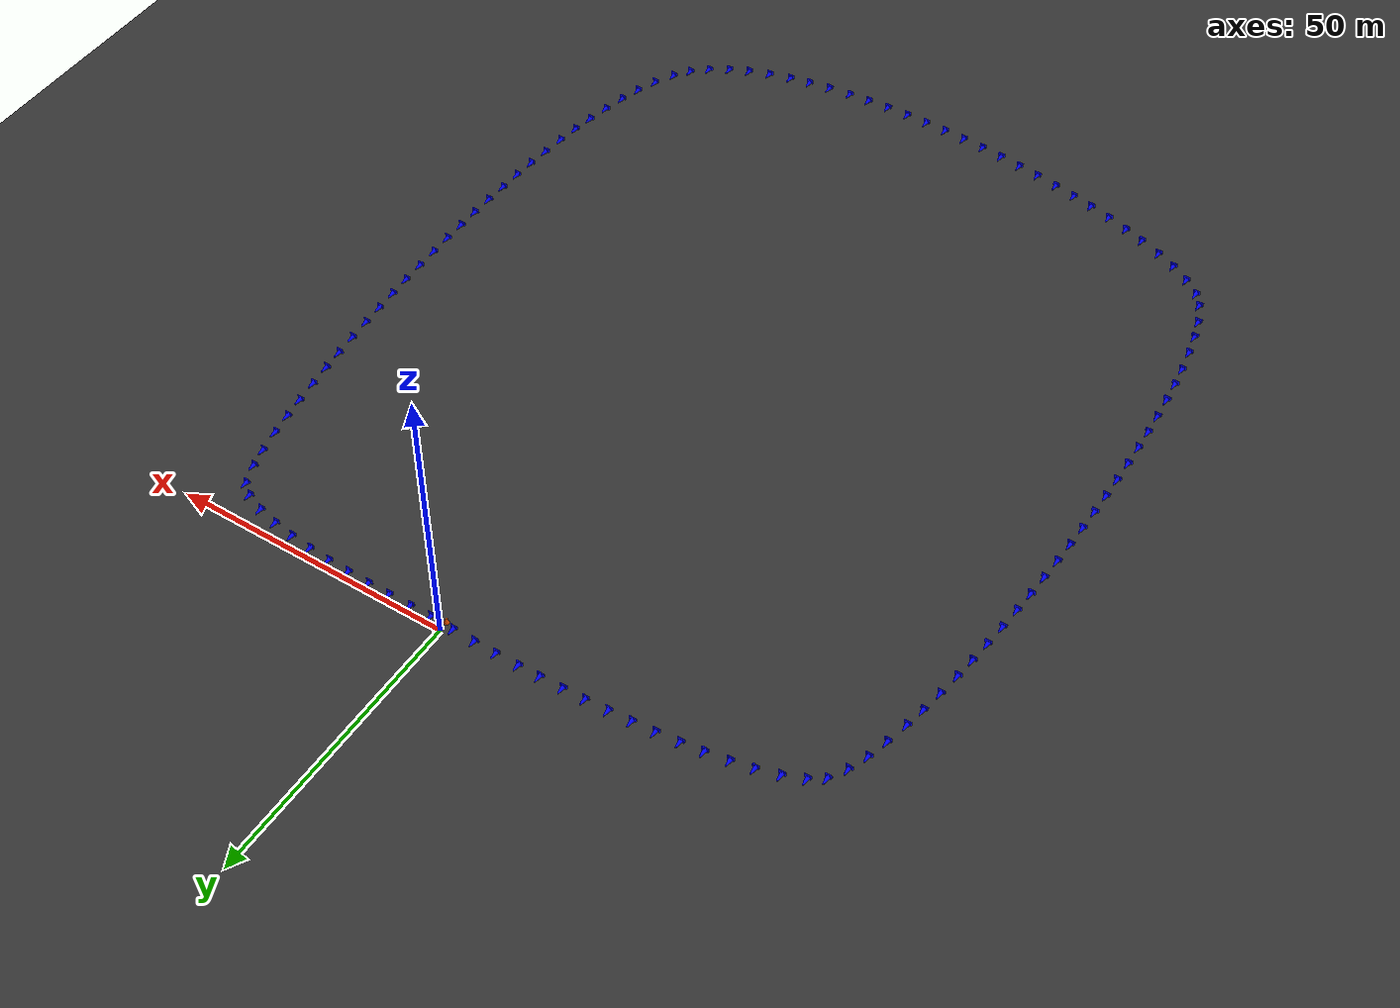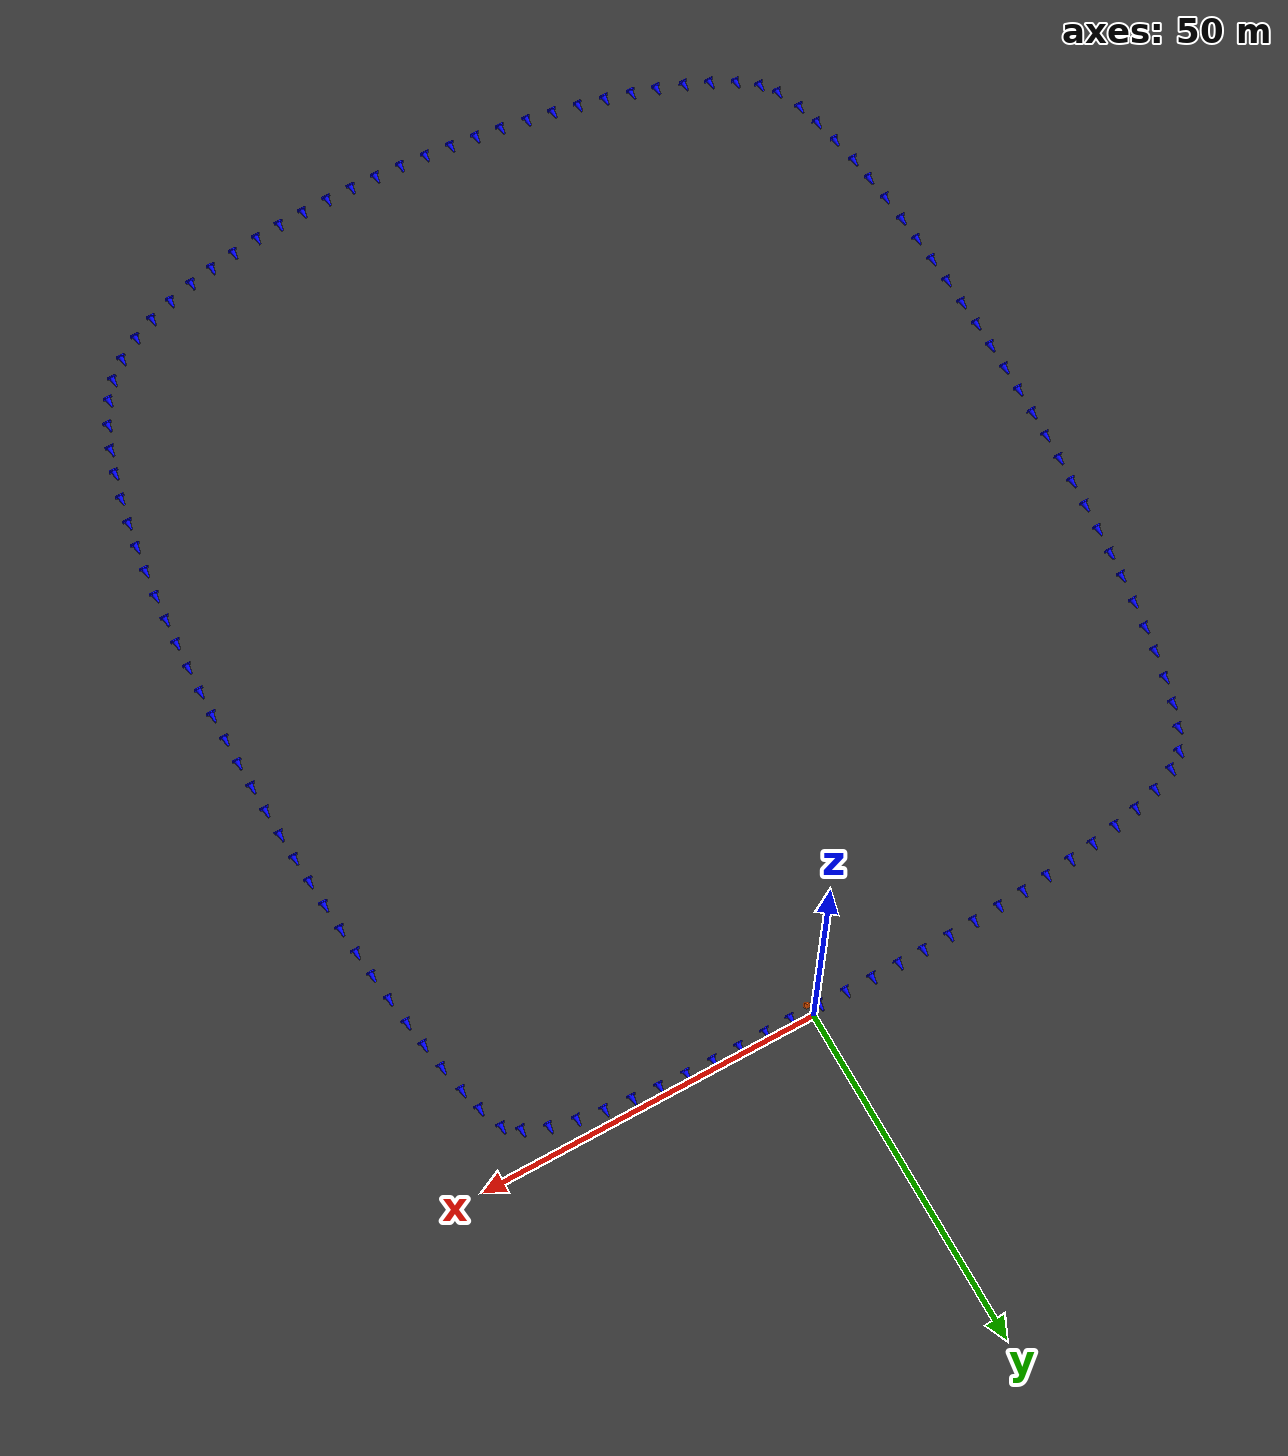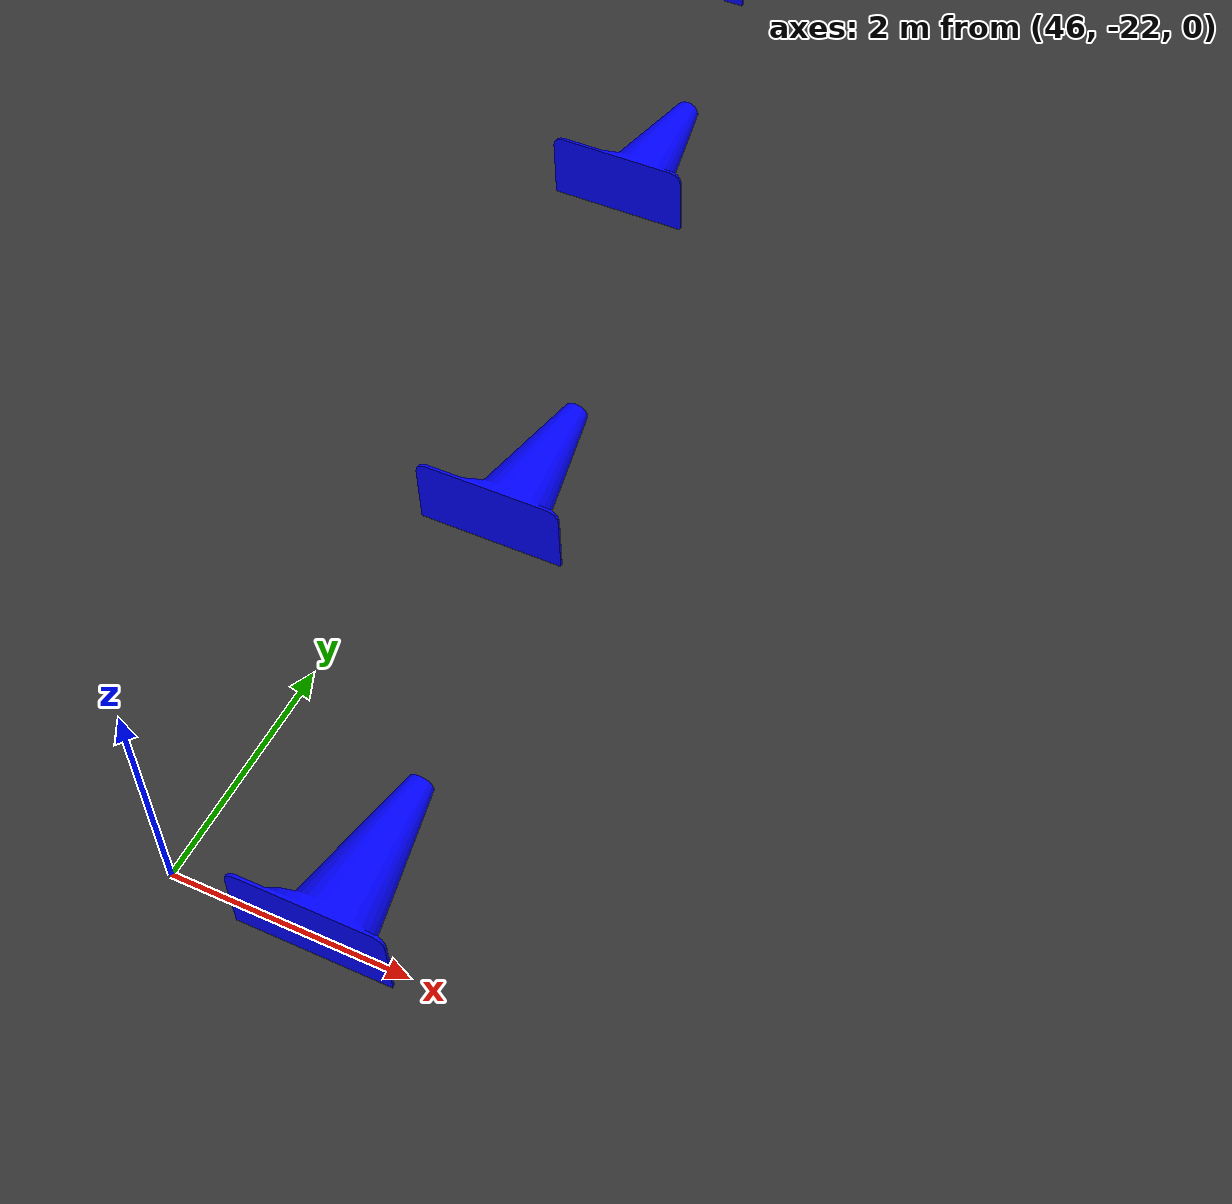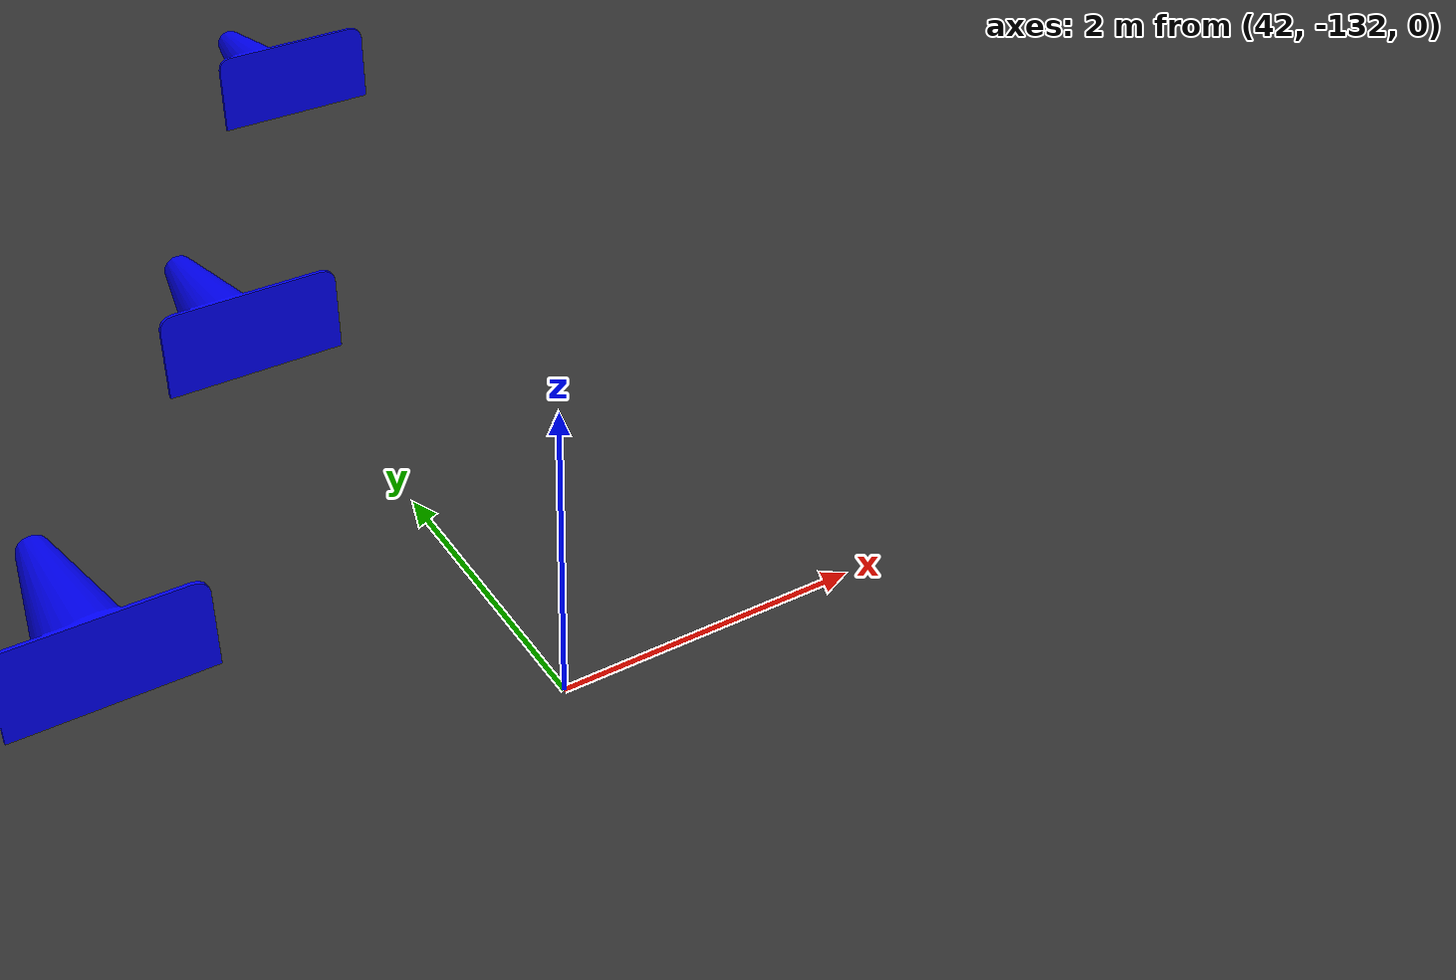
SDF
<sdf version="1.7">
 <world name="generated_world">
  <scene><sky><clouds><speed>12</speed></clouds></sky><grid>false</grid><shadows>1</shadows></scene>
  <physics type="ode">
   <max_step_size>0.001</max_step_size>
   <real_time_update_rate>1000</real_time_update_rate>
  </physics>
  <plugin filename="gz-sim-physics-system" name="gz::sim::systems::Physics"/>
  <plugin filename="gz-sim-user-commands-system" name="gz::sim::systems::UserCommands"/>
  <plugin filename="gz-sim-scene-broadcaster-system" name="gz::sim::systems::SceneBroadcaster"/>
  <plugin filename="gz-sim-contact-system" name="gz::sim::systems::Contact"/>
  <light name="sun" type="directional">
   <pose>0 0 10 0 0 0</pose>
   <diffuse>1 1 1 1</diffuse>
   <specular>0.2 0.2 0.2 1</specular>
   <direction>-0.5 0.2 -1</direction>
   <attenuation>
    <range>300</range>
    <constant>0.9</constant>
    <linear>0.01</linear>
    <quadratic>0.001</quadratic>
   </attenuation>
  </light>
  <model name="asphalt_ground">
   <static>1</static>
   <link name="link">
    <collision name="collision">
     <geometry><plane><normal>0 0 1</normal><size>300 300</size></plane></geometry>
     <surface><friction><ode><mu>100</mu><mu2>50</mu2></ode></friction></surface>
    </collision>
    <visual name="visual">
     <geometry><plane><normal>0 0 1</normal><size>300 300</size></plane></geometry>
     <material>
      <ambient>0.2 0.2 0.2 1</ambient>
      <diffuse>0.2 0.2 0.2 1</diffuse>
      <specular>0.1 0.1 0.1 1</specular>
     </material>
    </visual>
   </link>
  </model>
  <include><uri>model://cone_yellow</uri><name>cone_yellow_001</name><pose>2.761 1.924 0 0 0 0</pose></include>
  <include><uri>model://cone_yellow</uri><name>cone_yellow_002</name><pose>6.602 1.987 0 0 0 0</pose></include>
  <include><uri>model://cone_yellow</uri><name>cone_yellow_003</name><pose>10.665 2.022 0 0 0 0</pose></include>
  <include><uri>model://cone_yellow</uri><name>cone_yellow_004</name><pose>14.726 1.995 0 0 0 0</pose></include>
  <include><uri>model://cone_yellow</uri><name>cone_yellow_005</name><pose>18.802 1.890 0 0 0 0</pose></include>
  <include><uri>model://cone_yellow</uri><name>cone_yellow_006</name><pose>22.865 1.694 0 0 0 0</pose></include>
  <include><uri>model://cone_yellow</uri><name>cone_yellow_007</name><pose>26.916 1.383 0 0 0 0</pose></include>
  <include><uri>model://cone_yellow</uri><name>cone_yellow_008</name><pose>30.998 0.919 0 0 0 0</pose></include>
  <include><uri>model://cone_yellow</uri><name>cone_yellow_009</name><pose>35.063 0.244 0 0 0 0</pose></include>
  <include>
   <uri>model://cone_yellow</uri>
   <name>cone_yellow_010</name>
   <pose>39.097 -0.750 0 0 0 0</pose>
  </include>
  <include>
   <uri>model://cone_yellow</uri>
   <name>cone_yellow_011</name>
   <pose>43.122 -2.360 0 0 0 0</pose>
  </include>
  <include>
   <uri>model://cone_yellow</uri>
   <name>cone_yellow_012</name>
   <pose>46.529 -5.212 0 0 0 0</pose>
  </include>
  <include>
   <uri>model://cone_yellow</uri>
   <name>cone_yellow_013</name>
   <pose>48.322 -9.685 0 0 0 0</pose>
  </include>
  <include>
   <uri>model://cone_yellow</uri>
   <name>cone_yellow_014</name>
   <pose>49.221 -13.244 0 0 0 0</pose>
  </include>
  <include>
   <uri>model://cone_yellow</uri>
   <name>cone_yellow_015</name>
   <pose>50.065 -17.456 0 0 0 0</pose>
  </include>
  <include>
   <uri>model://cone_yellow</uri>
   <name>cone_yellow_016</name>
   <pose>50.732 -21.454 0 0 0 0</pose>
  </include>
  <include>
   <uri>model://cone_yellow</uri>
   <name>cone_yellow_017</name>
   <pose>51.290 -25.326 0 0 0 0</pose>
  </include>
  <include>
   <uri>model://cone_yellow</uri>
   <name>cone_yellow_018</name>
   <pose>51.813 -29.484 0 0 0 0</pose>
  </include>
  <include>
   <uri>model://cone_yellow</uri>
   <name>cone_yellow_019</name>
   <pose>52.264 -33.578 0 0 0 0</pose>
  </include>
  <include>
   <uri>model://cone_yellow</uri>
   <name>cone_yellow_020</name>
   <pose>52.640 -37.459 0 0 0 0</pose>
  </include>
  <include>
   <uri>model://cone_yellow</uri>
   <name>cone_yellow_021</name>
   <pose>52.982 -41.482 0 0 0 0</pose>
  </include>
  <include>
   <uri>model://cone_yellow</uri>
   <name>cone_yellow_022</name>
   <pose>53.286 -45.630 0 0 0 0</pose>
  </include>
  <include>
   <uri>model://cone_yellow</uri>
   <name>cone_yellow_023</name>
   <pose>53.535 -49.644 0 0 0 0</pose>
  </include>
  <include>
   <uri>model://cone_yellow</uri>
   <name>cone_yellow_024</name>
   <pose>53.741 -53.615 0 0 0 0</pose>
  </include>
  <include>
   <uri>model://cone_yellow</uri>
   <name>cone_yellow_025</name>
   <pose>53.907 -57.644 0 0 0 0</pose>
  </include>
  <include>
   <uri>model://cone_yellow</uri>
   <name>cone_yellow_026</name>
   <pose>54.033 -61.719 0 0 0 0</pose>
  </include>
  <include>
   <uri>model://cone_yellow</uri>
   <name>cone_yellow_027</name>
   <pose>54.113 -65.774 0 0 0 0</pose>
  </include>
  <include>
   <uri>model://cone_yellow</uri>
   <name>cone_yellow_028</name>
   <pose>54.149 -69.802 0 0 0 0</pose>
  </include>
  <include>
   <uri>model://cone_yellow</uri>
   <name>cone_yellow_029</name>
   <pose>54.139 -73.833 0 0 0 0</pose>
  </include>
  <include>
   <uri>model://cone_yellow</uri>
   <name>cone_yellow_030</name>
   <pose>54.080 -77.852 0 0 0 0</pose>
  </include>
  <include>
   <uri>model://cone_yellow</uri>
   <name>cone_yellow_031</name>
   <pose>53.968 -81.893 0 0 0 0</pose>
  </include>
  <include>
   <uri>model://cone_yellow</uri>
   <name>cone_yellow_032</name>
   <pose>53.798 -85.993 0 0 0 0</pose>
  </include>
  <include>
   <uri>model://cone_yellow</uri>
   <name>cone_yellow_033</name>
   <pose>53.568 -90.037 0 0 0 0</pose>
  </include>
  <include>
   <uri>model://cone_yellow</uri>
   <name>cone_yellow_034</name>
   <pose>53.276 -94.013 0 0 0 0</pose>
  </include>
  <include>
   <uri>model://cone_yellow</uri>
   <name>cone_yellow_035</name>
   <pose>52.910 -97.997 0 0 0 0</pose>
  </include>
  <include>
   <uri>model://cone_yellow</uri>
   <name>cone_yellow_036</name>
   <pose>52.436 -102.169 0 0 0 0</pose>
  </include>
  <include>
   <uri>model://cone_yellow</uri>
   <name>cone_yellow_037</name>
   <pose>51.877 -106.203 0 0 0 0</pose>
  </include>
  <include>
   <uri>model://cone_yellow</uri>
   <name>cone_yellow_038</name>
   <pose>51.227 -110.078 0 0 0 0</pose>
  </include>
  <include>
   <uri>model://cone_yellow</uri>
   <name>cone_yellow_039</name>
   <pose>50.404 -114.136 0 0 0 0</pose>
  </include>
  <include>
   <uri>model://cone_yellow</uri>
   <name>cone_yellow_040</name>
   <pose>49.381 -118.247 0 0 0 0</pose>
  </include>
  <include>
   <uri>model://cone_yellow</uri>
   <name>cone_yellow_041</name>
   <pose>48.209 -122.051 0 0 0 0</pose>
  </include>
  <include>
   <uri>model://cone_yellow</uri>
   <name>cone_yellow_042</name>
   <pose>46.701 -125.919 0 0 0 0</pose>
  </include>
  <include>
   <uri>model://cone_yellow</uri>
   <name>cone_yellow_043</name>
   <pose>44.684 -129.796 0 0 0 0</pose>
  </include>
  <include>
   <uri>model://cone_yellow</uri>
   <name>cone_yellow_044</name>
   <pose>42.317 -132.992 0 0 0 0</pose>
  </include>
  <include>
   <uri>model://cone_yellow</uri>
   <name>cone_yellow_045</name>
   <pose>39.255 -135.776 0 0 0 0</pose>
  </include>
  <include>
   <uri>model://cone_yellow</uri>
   <name>cone_yellow_046</name>
   <pose>35.584 -138.137 0 0 0 0</pose>
  </include>
  <include>
   <uri>model://cone_yellow</uri>
   <name>cone_yellow_047</name>
   <pose>31.905 -139.897 0 0 0 0</pose>
  </include>
  <include>
   <uri>model://cone_yellow</uri>
   <name>cone_yellow_048</name>
   <pose>28.028 -141.326 0 0 0 0</pose>
  </include>
  <include>
   <uri>model://cone_yellow</uri>
   <name>cone_yellow_049</name>
   <pose>23.914 -142.500 0 0 0 0</pose>
  </include>
  <include>
   <uri>model://cone_yellow</uri>
   <name>cone_yellow_050</name>
   <pose>20.053 -143.358 0 0 0 0</pose>
  </include>
  <include>
   <uri>model://cone_yellow</uri>
   <name>cone_yellow_051</name>
   <pose>16.014 -144.054 0 0 0 0</pose>
  </include>
  <include>
   <uri>model://cone_yellow</uri>
   <name>cone_yellow_052</name>
   <pose>11.848 -144.591 0 0 0 0</pose>
  </include>
  <include>
   <uri>model://cone_yellow</uri>
   <name>cone_yellow_053</name>
   <pose>7.893 -144.957 0 0 0 0</pose>
  </include>
  <include>
   <uri>model://cone_yellow</uri>
   <name>cone_yellow_054</name>
   <pose>3.847 -145.202 0 0 0 0</pose>
  </include>
  <include>
   <uri>model://cone_yellow</uri>
   <name>cone_yellow_055</name>
   <pose>-0.270 -145.333 0 0 0 0</pose>
  </include>
  <include>
   <uri>model://cone_yellow</uri>
   <name>cone_yellow_056</name>
   <pose>-4.316 -145.353 0 0 0 0</pose>
  </include>
  <include>
   <uri>model://cone_yellow</uri>
   <name>cone_yellow_057</name>
   <pose>-8.354 -145.275 0 0 0 0</pose>
  </include>
  <include>
   <uri>model://cone_yellow</uri>
   <name>cone_yellow_058</name>
   <pose>-12.404 -145.102 0 0 0 0</pose>
  </include>
  <include>
   <uri>model://cone_yellow</uri>
   <name>cone_yellow_059</name>
   <pose>-16.461 -144.837 0 0 0 0</pose>
  </include>
  <include>
   <uri>model://cone_yellow</uri>
   <name>cone_yellow_060</name>
   <pose>-20.519 -144.482 0 0 0 0</pose>
  </include>
  <include>
   <uri>model://cone_yellow</uri>
   <name>cone_yellow_061</name>
   <pose>-24.536 -144.043 0 0 0 0</pose>
  </include>
  <include>
   <uri>model://cone_yellow</uri>
   <name>cone_yellow_062</name>
   <pose>-28.495 -143.523 0 0 0 0</pose>
  </include>
  <include>
   <uri>model://cone_yellow</uri>
   <name>cone_yellow_063</name>
   <pose>-32.586 -142.891 0 0 0 0</pose>
  </include>
  <include>
   <uri>model://cone_yellow</uri>
   <name>cone_yellow_064</name>
   <pose>-36.596 -142.173 0 0 0 0</pose>
  </include>
  <include>
   <uri>model://cone_yellow</uri>
   <name>cone_yellow_065</name>
   <pose>-40.479 -141.377 0 0 0 0</pose>
  </include>
  <include>
   <uri>model://cone_yellow</uri>
   <name>cone_yellow_066</name>
   <pose>-44.519 -140.430 0 0 0 0</pose>
  </include>
  <include>
   <uri>model://cone_yellow</uri>
   <name>cone_yellow_067</name>
   <pose>-48.503 -139.360 0 0 0 0</pose>
  </include>
  <include>
   <uri>model://cone_yellow</uri>
   <name>cone_yellow_068</name>
   <pose>-52.239 -138.206 0 0 0 0</pose>
  </include>
  <include>
   <uri>model://cone_yellow</uri>
   <name>cone_yellow_069</name>
   <pose>-56.281 -136.747 0 0 0 0</pose>
  </include>
  <include>
   <uri>model://cone_yellow</uri>
   <name>cone_yellow_070</name>
   <pose>-60.022 -135.124 0 0 0 0</pose>
  </include>
  <include>
   <uri>model://cone_yellow</uri>
   <name>cone_yellow_071</name>
   <pose>-63.741 -133.089 0 0 0 0</pose>
  </include>
  <include>
   <uri>model://cone_yellow</uri>
   <name>cone_yellow_072</name>
   <pose>-67.132 -130.474 0 0 0 0</pose>
  </include>
  <include>
   <uri>model://cone_yellow</uri>
   <name>cone_yellow_073</name>
   <pose>-69.463 -127.326 0 0 0 0</pose>
  </include>
  <include>
   <uri>model://cone_yellow</uri>
   <name>cone_yellow_074</name>
   <pose>-71.238 -123.057 0 0 0 0</pose>
  </include>
  <include>
   <uri>model://cone_yellow</uri>
   <name>cone_yellow_075</name>
   <pose>-72.293 -119.314 0 0 0 0</pose>
  </include>
  <include>
   <uri>model://cone_yellow</uri>
   <name>cone_yellow_076</name>
   <pose>-73.147 -115.288 0 0 0 0</pose>
  </include>
  <include>
   <uri>model://cone_yellow</uri>
   <name>cone_yellow_077</name>
   <pose>-73.849 -110.996 0 0 0 0</pose>
  </include>
  <include>
   <uri>model://cone_yellow</uri>
   <name>cone_yellow_078</name>
   <pose>-74.340 -107.190 0 0 0 0</pose>
  </include>
  <include>
   <uri>model://cone_yellow</uri>
   <name>cone_yellow_079</name>
   <pose>-74.755 -103.167 0 0 0 0</pose>
  </include>
  <include>
   <uri>model://cone_yellow</uri>
   <name>cone_yellow_080</name>
   <pose>-75.096 -98.952 0 0 0 0</pose>
  </include>
  <include>
   <uri>model://cone_yellow</uri>
   <name>cone_yellow_081</name>
   <pose>-75.344 -94.973 0 0 0 0</pose>
  </include>
  <include>
   <uri>model://cone_yellow</uri>
   <name>cone_yellow_082</name>
   <pose>-75.528 -91.008 0 0 0 0</pose>
  </include>
  <include>
   <uri>model://cone_yellow</uri>
   <name>cone_yellow_083</name>
   <pose>-75.659 -86.948 0 0 0 0</pose>
  </include>
  <include>
   <uri>model://cone_yellow</uri>
   <name>cone_yellow_084</name>
   <pose>-75.738 -82.810 0 0 0 0</pose>
  </include>
  <include>
   <uri>model://cone_yellow</uri>
   <name>cone_yellow_085</name>
   <pose>-75.765 -78.811 0 0 0 0</pose>
  </include>
  <include>
   <uri>model://cone_yellow</uri>
   <name>cone_yellow_086</name>
   <pose>-75.747 -74.800 0 0 0 0</pose>
  </include>
  <include>
   <uri>model://cone_yellow</uri>
   <name>cone_yellow_087</name>
   <pose>-75.684 -70.766 0 0 0 0</pose>
  </include>
  <include>
   <uri>model://cone_yellow</uri>
   <name>cone_yellow_088</name>
   <pose>-75.579 -66.722 0 0 0 0</pose>
  </include>
  <include>
   <uri>model://cone_yellow</uri>
   <name>cone_yellow_089</name>
   <pose>-75.430 -62.659 0 0 0 0</pose>
  </include>
  <include>
   <uri>model://cone_yellow</uri>
   <name>cone_yellow_090</name>
   <pose>-75.238 -58.611 0 0 0 0</pose>
  </include>
  <include>
   <uri>model://cone_yellow</uri>
   <name>cone_yellow_091</name>
   <pose>-75.006 -54.599 0 0 0 0</pose>
  </include>
  <include>
   <uri>model://cone_yellow</uri>
   <name>cone_yellow_092</name>
   <pose>-74.733 -50.640 0 0 0 0</pose>
  </include>
  <include>
   <uri>model://cone_yellow</uri>
   <name>cone_yellow_093</name>
   <pose>-74.402 -46.536 0 0 0 0</pose>
  </include>
  <include>
   <uri>model://cone_yellow</uri>
   <name>cone_yellow_094</name>
   <pose>-74.020 -42.448 0 0 0 0</pose>
  </include>
  <include>
   <uri>model://cone_yellow</uri>
   <name>cone_yellow_095</name>
   <pose>-73.594 -38.476 0 0 0 0</pose>
  </include>
  <include>
   <uri>model://cone_yellow</uri>
   <name>cone_yellow_096</name>
   <pose>-73.126 -34.638 0 0 0 0</pose>
  </include>
  <include>
   <uri>model://cone_yellow</uri>
   <name>cone_yellow_097</name>
   <pose>-72.531 -30.391 0 0 0 0</pose>
  </include>
  <include>
   <uri>model://cone_yellow</uri>
   <name>cone_yellow_098</name>
   <pose>-71.877 -26.349 0 0 0 0</pose>
  </include>
  <include>
   <uri>model://cone_yellow</uri>
   <name>cone_yellow_099</name>
   <pose>-71.169 -22.572 0 0 0 0</pose>
  </include>
  <include>
   <uri>model://cone_yellow</uri>
   <name>cone_yellow_100</name>
   <pose>-70.230 -18.360 0 0 0 0</pose>
  </include>
  <include>
   <uri>model://cone_yellow</uri>
   <name>cone_yellow_101</name>
   <pose>-69.130 -14.376 0 0 0 0</pose>
  </include>
  <include>
   <uri>model://cone_yellow</uri>
   <name>cone_yellow_102</name>
   <pose>-67.737 -10.557 0 0 0 0</pose>
  </include>
  <include>
   <uri>model://cone_yellow</uri>
   <name>cone_yellow_103</name>
   <pose>-65.402 -6.620 0 0 0 0</pose>
  </include>
  <include>
   <uri>model://cone_yellow</uri>
   <name>cone_yellow_104</name>
   <pose>-62.031 -4.181 0 0 0 0</pose>
  </include>
  <include>
   <uri>model://cone_yellow</uri>
   <name>cone_yellow_105</name>
   <pose>-58.059 -2.518 0 0 0 0</pose>
  </include>
  <include>
   <uri>model://cone_yellow</uri>
   <name>cone_yellow_106</name>
   <pose>-53.983 -1.341 0 0 0 0</pose>
  </include>
  <include>
   <uri>model://cone_yellow</uri>
   <name>cone_yellow_107</name>
   <pose>-50.052 -0.492 0 0 0 0</pose>
  </include>
  <include>
   <uri>model://cone_yellow</uri>
   <name>cone_yellow_108</name>
   <pose>-45.934 0.200 0 0 0 0</pose>
  </include>
  <include>
   <uri>model://cone_yellow</uri>
   <name>cone_yellow_109</name>
   <pose>-41.970 0.726 0 0 0 0</pose>
  </include>
  <include>
   <uri>model://cone_yellow</uri>
   <name>cone_yellow_110</name>
   <pose>-37.893 1.157 0 0 0 0</pose>
  </include>
  <include>
   <uri>model://cone_yellow</uri>
   <name>cone_yellow_111</name>
   <pose>-33.875 1.493 0 0 0 0</pose>
  </include>
  <include>
   <uri>model://cone_yellow</uri>
   <name>cone_yellow_112</name>
   <pose>-29.850 1.756 0 0 0 0</pose>
  </include>
  <include>
   <uri>model://cone_yellow</uri>
   <name>cone_yellow_113</name>
   <pose>-25.777 1.958 0 0 0 0</pose>
  </include>
  <include>
   <uri>model://cone_yellow</uri>
   <name>cone_yellow_114</name>
   <pose>-21.799 2.100 0 0 0 0</pose>
  </include>
  <include>
   <uri>model://cone_yellow</uri>
   <name>cone_yellow_115</name>
   <pose>-17.677 2.194 0 0 0 0</pose>
  </include>
  <include>
   <uri>model://cone_yellow</uri>
   <name>cone_yellow_116</name>
   <pose>-13.753 2.239 0 0 0 0</pose>
  </include>
  <include><uri>model://cone_yellow</uri><name>cone_yellow_117</name><pose>-9.593 2.239 0 0 0 0</pose></include>
  <include><uri>model://cone_yellow</uri><name>cone_yellow_118</name><pose>-5.511 2.189 0 0 0 0</pose></include>
  <include><uri>model://cone_yellow</uri><name>cone_yellow_119</name><pose>-1.414 2.079 0 0 0 0</pose></include>
  <include><uri>model://cone_blue</uri><name>cone_blue_001</name><pose>2.769 -1.576 0 0 0 0</pose></include>
  <include><uri>model://cone_blue</uri><name>cone_blue_002</name><pose>6.655 -1.513 0 0 0 0</pose></include>
  <include><uri>model://cone_blue</uri><name>cone_blue_003</name><pose>10.670 -1.478 0 0 0 0</pose></include>
  <include><uri>model://cone_blue</uri><name>cone_blue_004</name><pose>14.671 -1.505 0 0 0 0</pose></include>
  <include><uri>model://cone_blue</uri><name>cone_blue_005</name><pose>18.675 -1.607 0 0 0 0</pose></include>
  <include><uri>model://cone_blue</uri><name>cone_blue_006</name><pose>22.650 -1.800 0 0 0 0</pose></include>
  <include><uri>model://cone_blue</uri><name>cone_blue_007</name><pose>26.591 -2.102 0 0 0 0</pose></include>
  <include><uri>model://cone_blue</uri><name>cone_blue_008</name><pose>30.525 -2.549 0 0 0 0</pose></include>
  <include><uri>model://cone_blue</uri><name>cone_blue_009</name><pose>34.378 -3.188 0 0 0 0</pose></include>
  <include><uri>model://cone_blue</uri><name>cone_blue_010</name><pose>38.079 -4.099 0 0 0 0</pose></include>
  <include><uri>model://cone_blue</uri><name>cone_blue_011</name><pose>41.476 -5.449 0 0 0 0</pose></include>
  <include><uri>model://cone_blue</uri><name>cone_blue_012</name><pose>43.570 -7.082 0 0 0 0</pose></include>
  <include><uri>model://cone_blue</uri><name>cone_blue_013</name><pose>44.960 -10.659 0 0 0 0</pose></include>
  <include><uri>model://cone_blue</uri><name>cone_blue_014</name><pose>45.805 -14.007 0 0 0 0</pose></include>
  <include><uri>model://cone_blue</uri><name>cone_blue_015</name><pose>46.621 -18.079 0 0 0 0</pose></include>
  <include><uri>model://cone_blue</uri><name>cone_blue_016</name><pose>47.273 -21.988 0 0 0 0</pose></include>
  <include><uri>model://cone_blue</uri><name>cone_blue_017</name><pose>47.821 -25.794 0 0 0 0</pose></include>
  <include><uri>model://cone_blue</uri><name>cone_blue_018</name><pose>48.337 -29.892 0 0 0 0</pose></include>
  <include><uri>model://cone_blue</uri><name>cone_blue_019</name><pose>48.783 -33.936 0 0 0 0</pose></include>
  <include><uri>model://cone_blue</uri><name>cone_blue_020</name><pose>49.154 -37.775 0 0 0 0</pose></include>
  <include><uri>model://cone_blue</uri><name>cone_blue_021</name><pose>49.492 -41.758 0 0 0 0</pose></include>
  <include><uri>model://cone_blue</uri><name>cone_blue_022</name><pose>49.794 -45.866 0 0 0 0</pose></include>
  <include><uri>model://cone_blue</uri><name>cone_blue_023</name><pose>50.041 -49.843 0 0 0 0</pose></include>
  <include><uri>model://cone_blue</uri><name>cone_blue_024</name><pose>50.245 -53.777 0 0 0 0</pose></include>
  <include><uri>model://cone_blue</uri><name>cone_blue_025</name><pose>50.410 -57.770 0 0 0 0</pose></include>
  <include><uri>model://cone_blue</uri><name>cone_blue_026</name><pose>50.534 -61.808 0 0 0 0</pose></include>
  <include><uri>model://cone_blue</uri><name>cone_blue_027</name><pose>50.614 -65.825 0 0 0 0</pose></include>
  <include><uri>model://cone_blue</uri><name>cone_blue_028</name><pose>50.649 -69.813 0 0 0 0</pose></include>
  <include><uri>model://cone_blue</uri><name>cone_blue_029</name><pose>50.639 -73.803 0 0 0 0</pose></include>
  <include><uri>model://cone_blue</uri><name>cone_blue_030</name><pose>50.580 -77.779 0 0 0 0</pose></include>
  <include><uri>model://cone_blue</uri><name>cone_blue_031</name><pose>50.470 -81.773 0 0 0 0</pose></include>
  <include><uri>model://cone_blue</uri><name>cone_blue_032</name><pose>50.302 -85.821 0 0 0 0</pose></include>
  <include><uri>model://cone_blue</uri><name>cone_blue_033</name><pose>50.075 -89.811 0 0 0 0</pose></include>
  <include><uri>model://cone_blue</uri><name>cone_blue_034</name><pose>49.788 -93.726 0 0 0 0</pose></include>
  <include><uri>model://cone_blue</uri><name>cone_blue_035</name><pose>49.428 -97.642 0 0 0 0</pose></include>
  <include><uri>model://cone_blue</uri><name>cone_blue_036</name><pose>48.963 -101.733 0 0 0 0</pose></include>
  <include><uri>model://cone_blue</uri><name>cone_blue_037</name><pose>48.417 -105.675 0 0 0 0</pose></include>
  <include><uri>model://cone_blue</uri><name>cone_blue_038</name><pose>47.785 -109.446 0 0 0 0</pose></include>
  <include><uri>model://cone_blue</uri><name>cone_blue_039</name><pose>46.988 -113.372 0 0 0 0</pose></include>
  <include><uri>model://cone_blue</uri><name>cone_blue_040</name><pose>46.008 -117.314 0 0 0 0</pose></include>
  <include><uri>model://cone_blue</uri><name>cone_blue_041</name><pose>44.898 -120.914 0 0 0 0</pose></include>
  <include><uri>model://cone_blue</uri><name>cone_blue_042</name><pose>43.501 -124.499 0 0 0 0</pose></include>
  <include><uri>model://cone_blue</uri><name>cone_blue_043</name><pose>41.702 -127.963 0 0 0 0</pose></include>
  <include><uri>model://cone_blue</uri><name>cone_blue_044</name><pose>39.724 -130.641 0 0 0 0</pose></include>
  <include><uri>model://cone_blue</uri><name>cone_blue_045</name><pose>37.139 -132.988 0 0 0 0</pose></include>
  <include><uri>model://cone_blue</uri><name>cone_blue_046</name><pose>33.903 -135.067 0 0 0 0</pose></include>
  <include><uri>model://cone_blue</uri><name>cone_blue_047</name><pose>30.554 -136.668 0 0 0 0</pose></include>
  <include><uri>model://cone_blue</uri><name>cone_blue_048</name><pose>26.949 -137.996 0 0 0 0</pose></include>
  <include><uri>model://cone_blue</uri><name>cone_blue_049</name><pose>23.064 -139.105 0 0 0 0</pose></include>
  <include><uri>model://cone_blue</uri><name>cone_blue_050</name><pose>19.380 -139.924 0 0 0 0</pose></include>
  <include><uri>model://cone_blue</uri><name>cone_blue_051</name><pose>15.496 -140.593 0 0 0 0</pose></include>
  <include><uri>model://cone_blue</uri><name>cone_blue_052</name><pose>11.468 -141.112 0 0 0 0</pose></include>
  <include><uri>model://cone_blue</uri><name>cone_blue_053</name><pose>7.627 -141.467 0 0 0 0</pose></include>
  <include><uri>model://cone_blue</uri><name>cone_blue_054</name><pose>3.686 -141.706 0 0 0 0</pose></include>
  <include><uri>model://cone_blue</uri><name>cone_blue_055</name><pose>-0.333 -141.833 0 0 0 0</pose></include>
  <include><uri>model://cone_blue</uri><name>cone_blue_056</name><pose>-4.290 -141.853 0 0 0 0</pose></include>
  <include><uri>model://cone_blue</uri><name>cone_blue_057</name><pose>-8.244 -141.776 0 0 0 0</pose></include>
  <include><uri>model://cone_blue</uri><name>cone_blue_058</name><pose>-12.215 -141.607 0 0 0 0</pose></include>
  <include><uri>model://cone_blue</uri><name>cone_blue_059</name><pose>-16.195 -141.347 0 0 0 0</pose></include>
  <include><uri>model://cone_blue</uri><name>cone_blue_060</name><pose>-20.176 -140.999 0 0 0 0</pose></include>
  <include><uri>model://cone_blue</uri><name>cone_blue_061</name><pose>-24.118 -140.568 0 0 0 0</pose></include>
  <include><uri>model://cone_blue</uri><name>cone_blue_062</name><pose>-28.002 -140.058 0 0 0 0</pose></include>
  <include><uri>model://cone_blue</uri><name>cone_blue_063</name><pose>-32.011 -139.439 0 0 0 0</pose></include>
  <include><uri>model://cone_blue</uri><name>cone_blue_064</name><pose>-35.937 -138.736 0 0 0 0</pose></include>
  <include><uri>model://cone_blue</uri><name>cone_blue_065</name><pose>-39.730 -137.958 0 0 0 0</pose></include>
  <include><uri>model://cone_blue</uri><name>cone_blue_066</name><pose>-43.668 -137.035 0 0 0 0</pose></include>
  <include><uri>model://cone_blue</uri><name>cone_blue_067</name><pose>-47.534 -135.996 0 0 0 0</pose></include>
  <include><uri>model://cone_blue</uri><name>cone_blue_068</name><pose>-51.139 -134.883 0 0 0 0</pose></include>
  <include><uri>model://cone_blue</uri><name>cone_blue_069</name><pose>-54.998 -133.491 0 0 0 0</pose></include>
  <include><uri>model://cone_blue</uri><name>cone_blue_070</name><pose>-58.507 -131.969 0 0 0 0</pose></include>
  <include><uri>model://cone_blue</uri><name>cone_blue_071</name><pose>-61.873 -130.129 0 0 0 0</pose></include>
  <include><uri>model://cone_blue</uri><name>cone_blue_072</name><pose>-64.684 -127.973 0 0 0 0</pose></include>
  <include><uri>model://cone_blue</uri><name>cone_blue_073</name><pose>-66.381 -125.668 0 0 0 0</pose></include>
  <include><uri>model://cone_blue</uri><name>cone_blue_074</name><pose>-67.913 -121.965 0 0 0 0</pose></include>
  <include><uri>model://cone_blue</uri><name>cone_blue_075</name><pose>-68.891 -118.488 0 0 0 0</pose></include>
  <include><uri>model://cone_blue</uri><name>cone_blue_076</name><pose>-69.706 -114.649 0 0 0 0</pose></include>
  <include><uri>model://cone_blue</uri><name>cone_blue_077</name><pose>-70.385 -110.498 0 0 0 0</pose></include>
  <include><uri>model://cone_blue</uri><name>cone_blue_078</name><pose>-70.863 -106.788 0 0 0 0</pose></include>
  <include><uri>model://cone_blue</uri><name>cone_blue_079</name><pose>-71.270 -102.848 0 0 0 0</pose></include>
  <include><uri>model://cone_blue</uri><name>cone_blue_080</name><pose>-71.605 -98.704 0 0 0 0</pose></include>
  <include><uri>model://cone_blue</uri><name>cone_blue_081</name><pose>-71.849 -94.784 0 0 0 0</pose></include>
  <include><uri>model://cone_blue</uri><name>cone_blue_082</name><pose>-72.031 -90.871 0 0 0 0</pose></include>
  <include><uri>model://cone_blue</uri><name>cone_blue_083</name><pose>-72.160 -86.858 0 0 0 0</pose></include>
  <include><uri>model://cone_blue</uri><name>cone_blue_084</name><pose>-72.238 -82.766 0 0 0 0</pose></include>
  <include><uri>model://cone_blue</uri><name>cone_blue_085</name><pose>-72.265 -78.808 0 0 0 0</pose></include>
  <include><uri>model://cone_blue</uri><name>cone_blue_086</name><pose>-72.247 -74.835 0 0 0 0</pose></include>
  <include><uri>model://cone_blue</uri><name>cone_blue_087</name><pose>-72.185 -70.838 0 0 0 0</pose></include>
  <include><uri>model://cone_blue</uri><name>cone_blue_088</name><pose>-72.081 -66.832 0 0 0 0</pose></include>
  <include><uri>model://cone_blue</uri><name>cone_blue_089</name><pose>-71.933 -62.806 0 0 0 0</pose></include>
  <include><uri>model://cone_blue</uri><name>cone_blue_090</name><pose>-71.743 -58.795 0 0 0 0</pose></include>
  <include><uri>model://cone_blue</uri><name>cone_blue_091</name><pose>-71.513 -54.821 0 0 0 0</pose></include>
  <include><uri>model://cone_blue</uri><name>cone_blue_092</name><pose>-71.242 -50.900 0 0 0 0</pose></include>
  <include><uri>model://cone_blue</uri><name>cone_blue_093</name><pose>-70.915 -46.839 0 0 0 0</pose></include>
  <include><uri>model://cone_blue</uri><name>cone_blue_094</name><pose>-70.537 -42.797 0 0 0 0</pose></include>
  <include><uri>model://cone_blue</uri><name>cone_blue_095</name><pose>-70.117 -38.874 0 0 0 0</pose></include>
  <include><uri>model://cone_blue</uri><name>cone_blue_096</name><pose>-69.655 -35.089 0 0 0 0</pose></include>
  <include><uri>model://cone_blue</uri><name>cone_blue_097</name><pose>-69.070 -30.911 0 0 0 0</pose></include>
  <include><uri>model://cone_blue</uri><name>cone_blue_098</name><pose>-68.429 -26.949 0 0 0 0</pose></include>
  <include><uri>model://cone_blue</uri><name>cone_blue_099</name><pose>-67.739 -23.267 0 0 0 0</pose></include>
  <include><uri>model://cone_blue</uri><name>cone_blue_100</name><pose>-66.832 -19.197 0 0 0 0</pose></include>
  <include><uri>model://cone_blue</uri><name>cone_blue_101</name><pose>-65.788 -15.418 0 0 0 0</pose></include>
  <include><uri>model://cone_blue</uri><name>cone_blue_102</name><pose>-64.526 -11.949 0 0 0 0</pose></include>
  <include><uri>model://cone_blue</uri><name>cone_blue_103</name><pose>-62.779 -8.937 0 0 0 0</pose></include>
  <include><uri>model://cone_blue</uri><name>cone_blue_104</name><pose>-60.408 -7.283 0 0 0 0</pose></include>
  <include><uri>model://cone_blue</uri><name>cone_blue_105</name><pose>-56.933 -5.832 0 0 0 0</pose></include>
  <include><uri>model://cone_blue</uri><name>cone_blue_106</name><pose>-53.146 -4.740 0 0 0 0</pose></include>
  <include><uri>model://cone_blue</uri><name>cone_blue_107</name><pose>-49.400 -3.931 0 0 0 0</pose></include>
  <include><uri>model://cone_blue</uri><name>cone_blue_108</name><pose>-45.420 -3.262 0 0 0 0</pose></include>
  <include><uri>model://cone_blue</uri><name>cone_blue_109</name><pose>-41.559 -2.750 0 0 0 0</pose></include>
  <include><uri>model://cone_blue</uri><name>cone_blue_110</name><pose>-37.565 -2.328 0 0 0 0</pose></include>
  <include><uri>model://cone_blue</uri><name>cone_blue_111</name><pose>-33.617 -1.998 0 0 0 0</pose></include>
  <include><uri>model://cone_blue</uri><name>cone_blue_112</name><pose>-29.651 -1.738 0 0 0 0</pose></include>
  <include><uri>model://cone_blue</uri><name>cone_blue_113</name><pose>-25.629 -1.539 0 0 0 0</pose></include>
  <include><uri>model://cone_blue</uri><name>cone_blue_114</name><pose>-21.696 -1.399 0 0 0 0</pose></include>
  <include><uri>model://cone_blue</uri><name>cone_blue_115</name><pose>-17.618 -1.305 0 0 0 0</pose></include>
  <include><uri>model://cone_blue</uri><name>cone_blue_116</name><pose>-13.733 -1.261 0 0 0 0</pose></include>
  <include><uri>model://cone_blue</uri><name>cone_blue_117</name><pose>-9.614 -1.261 0 0 0 0</pose></include>
  <include><uri>model://cone_blue</uri><name>cone_blue_118</name><pose>-5.575 -1.310 0 0 0 0</pose></include>
  <include><uri>model://cone_blue</uri><name>cone_blue_119</name><pose>-1.547 -1.418 0 0 0 0</pose></include>
  <include>
   <uri>model://cone_orange_big</uri>
   <name>cone_orange_big_001</name>
   <pose>0.000 -1.726 0 0 0 0</pose>
  </include>
  <include>
   <uri>model://cone_orange_big</uri>
   <name>cone_orange_big_002</name>
   <pose>0.000 1.726 0 0 0 0</pose>
  </include>
 </world>
</sdf>

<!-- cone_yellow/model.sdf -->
<sdf version="1.6">
  <model name="cone_yellow">
    <static>1</static>
    <link name="link">

      <visual name="visual">
        <pose>0 0 0 0 0 0</pose>
        <geometry>
          <mesh>
            <uri>model://cone_yellow/meshes/cone.stl</uri>
            <scale>0.005 0.005 0.005</scale>
          </mesh>
        </geometry>
        <material>
          <ambient>1.0 1.0 0.0 1</ambient>
          <diffuse>1.0 1.0 0.0 1</diffuse>
        </material>
      </visual>

      <collision name="collision">
        <pose>0 0 0.15 0 0 0</pose>
        <geometry>
          <cylinder>
            <radius>0.1</radius>
            <length>0.3</length>
          </cylinder>
        </geometry>
        <surface>
          <friction>
            <ode>
              <mu>0.9</mu> <mu2>0.9</mu2> </ode>
          </friction>
        </surface>
      </collision>

      <inertial>
        <pose>0 0 0.05 0 0 0</pose>
        <mass>1</mass>
        <inertia>
          <ixx>0.01</ixx> <iyy>0.01</iyy> <izz>0.005</izz>
          <ixy>0.0</ixy> <ixz>0.0</ixz> <iyz>0.0</iyz>
        </inertia>
      </inertial>

    </link>
  </model>
</sdf>

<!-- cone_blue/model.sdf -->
<sdf version="1.6">
  <model name="cone_blue">
    <static>1</static>
    <link name="link">

      <inertial>
        <pose>0 0 0.05 0 0 0</pose> <mass>1</mass>
        <inertia>
          <ixx>0.01</ixx> <iyy>0.01</iyy> <izz>0.005</izz>
          <ixy>0.0</ixy> <ixz>0.0</ixz> <iyz>0.0</iyz>
        </inertia>
      </inertial>

      <collision name="collision">
        <pose>0 0 0.15 0 0 0</pose>
        <geometry>
          <cylinder>
            <radius>0.1</radius>
            <length>0.3</length>
          </cylinder>
        </geometry>
      </collision>

      <visual name="visual">
        <pose>0 0 0 0 0 0</pose>
        <geometry>
          <mesh>
            <uri>model://cone_blue/meshes/cone.stl</uri>
            <scale>0.005 0.005 0.005</scale>
          </mesh>
        </geometry>
        <material>
          <ambient>0.0 0.0 1.0 1</ambient>
          <diffuse>0.0 0.0 1.0 1</diffuse>
        </material>
      </visual>

    </link>
  </model>
</sdf>

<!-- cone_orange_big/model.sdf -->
<sdf version="1.6">
  <model name="cone_orange_big">
    <static>1</static>
    <link name="link">
      <visual name="visual">
        <geometry>
          <mesh>
            <uri>model://cone_orange_big/meshes/cone.stl</uri>
            <scale>0.0112 0.0112 0.0112</scale>
          </mesh>
        </geometry>
        <material>
          <ambient>1.0 0.35 0.0 1</ambient>
	  <diffuse>1.0 0.35 0.0 1</diffuse>
        </material>
      </visual>
      <collision name="collision">
        <geometry>
          <mesh>
            <uri>model://cone_orange_big/meshes/cone.stl</uri>
            <scale>0.0112 0.0112 0.0112</scale>
          </mesh>
        </geometry>
      </collision>
      <inertial>
        <mass>0.1</mass>
        <inertia>
          <ixx>0.0001</ixx>
          <iyy>0.0001</iyy>
          <izz>0.0001</izz>
          <ixy>0.0</ixy>
          <ixz>0.0</ixz>
          <iyz>0.0</iyz>
        </inertia>
      </inertial>
    </link>
  </model>
</sdf>
